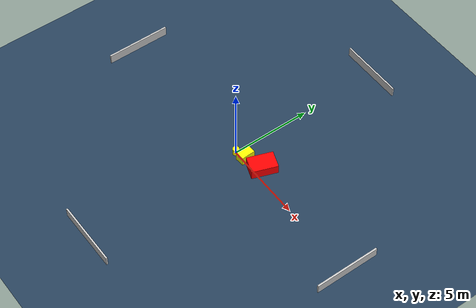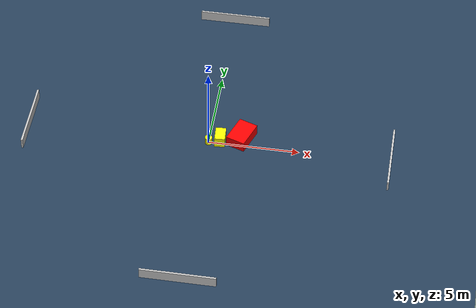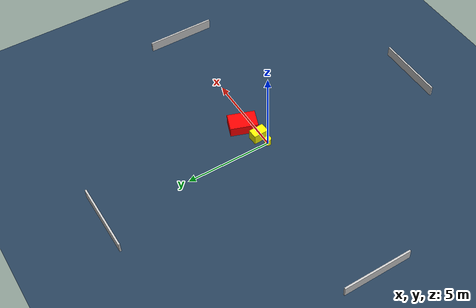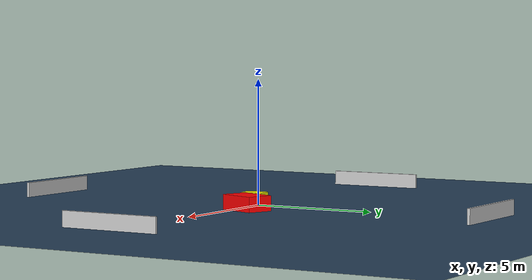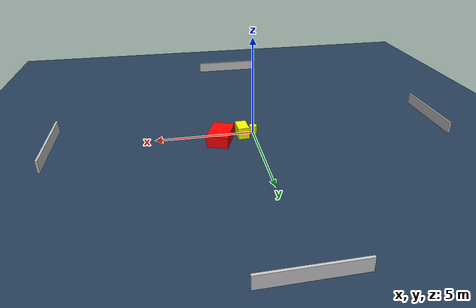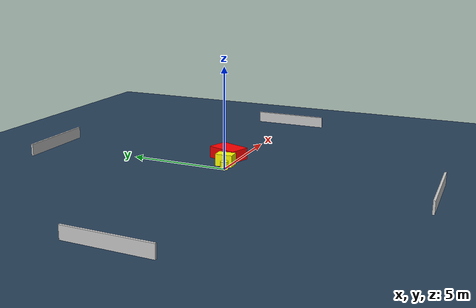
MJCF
<?xml version="1.0" ?>
<mujoco model="generated_environment">
  <option timestep="0.01" integrator="RK4" cone="elliptic"/>
  <default>
    <geom density="1"/>
  </default>
  <asset>
    <texture builtin="gradient" height="3072" name="skybox" rgb1="0.3 0.5 0.7" rgb2="0 0 0" type="skybox" width="512"/>
    <texture builtin="checker" height="300" name="groundplane" rgb1="0.2 0.3 0.4" rgb2="0.1 0.2 0.3" type="2d" width="300"/>
    <material name="groundplane" reflectance="0.2" texrepeat="5 5" texture="groundplane"/>
  </asset>
  <worldbody>
    <light dir="0 0 -1" directional="true" pos="0 0 1.5"/>
    <geom condim="3" friction="0.5 0.005 0.001" material="groundplane" name="floor" pos="0 0 0" size="0 0 0.05" type="plane"/>
    <body name="walls">
      <geom name="wall_1" condim="4" pos="-10.0 0.0 0.3" rgba="0.800000011920929 0.800000011920929 0.800000011920929 1.0" size="0.05 2.0 0.3" type="box"/>
      <geom name="wall_2" condim="4" pos="10.0 0.0 0.3" rgba="0.800000011920929 0.800000011920929 0.800000011920929 1.0" size="0.05 2.0 0.3" type="box"/>
      <geom name="wall_3" condim="4" pos="0.0 -10.0 0.3" rgba="0.800000011920929 0.800000011920929 0.800000011920929 1.0" size="2.0 0.05 0.3" type="box"/>
      <geom name="wall_4" condim="4" pos="0.0 10.0 0.3" rgba="0.800000011920929 0.800000011920929 0.800000011920929 1.0" size="2.0 0.05 0.3" type="box"/>
    </body>
    <body name="robot">
      <joint name="joint_x" type="slide" pos="0 0 0" axis="1 0 0"/>
      <joint name="joint_y" type="slide" pos="0 0 0" axis="0 1 0"/>
      <geom name="robot" type="cylinder" pos="0.0 0.0 0.2" size="0.2 0.2 0.0" mass="5.0" friction="1.0 0.005 0.0001" condim="4" rgba="1.0 1.0 0.0 1.0"/>
    </body>
    <body name="obstacle_1_movable">
      <geom name="obstacle_1_movable" condim="4" pos="0.617103725260138 0.20736787686099656 0.3" euler="0 0 92.91270214029252" friction="0.0 0.005 0.001" rgba="1.0 1.0 0.0 1.0" size="0.441703169341733 0.28707996447878104 0.3" type="box" mass="0.1"/>
      <joint type="free"/>
    </body>
    <body name="obstacle_2_static">
      <geom name="obstacle_2_static" condim="4" pos="1.756393200659609 0.5527900677023385 0.3" euler="0 0 160.13509979463348" friction="0.0 0.005 0.001" rgba="1.0 0.0 0.0 1.0" size="0.5397834303903021 0.7984931666805388 0.3" type="box"/>
    </body>
  </worldbody>
  <actuator>
    <motor name="actuator_x" joint="joint_x" gear="1" ctrlrange="-1 1"/>
    <motor name="actuator_y" joint="joint_y" gear="1" ctrlrange="-1 1"/>
  </actuator>
</mujoco>
